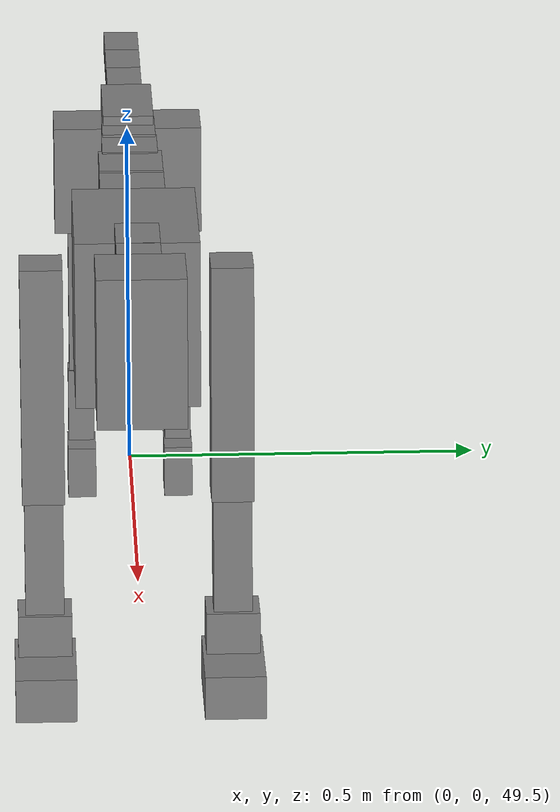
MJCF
<mujoco model="dog">

    <default>
        <joint armature="0.02" stiffness="1" damping="0.2" limited="true"/>
        <geom condim="3" friction="1 0.05 0.05" margin="0.01"/>
        <motor ctrllimited="true" ctrlrange="-1.0 1.0" forcelimited="true" gear="50"/>
    </default>

    <compiler inertiafromgeom="true" angle="radian"/>

    <option timestep="0.016" iterations="50" tolerance="1e-10" solver="Newton" jacobian="dense" cone="pyramidal"/>

    <size nconmax="20000" njmax="60000" nstack="5000000"/>
    <visual>
        <map force="0.1" zfar="30"/>
        <rgba haze="0.15 0.25 0.35 1"/>
        <quality shadowsize="2048"/>
        <global offwidth="800" offheight="800"/>
    </visual>

    <asset>
        <texture type="skybox" builtin="gradient" rgb1="0.3 0.5 0.7" rgb2="0 0 0" width="512" height="512"/>
        <texture name="texplane" type="2d" builtin="checker" rgb1=".2 .3 .4" rgb2=".1 0.15 0.2" width="512" height="512"
                 mark="cross" markrgb=".8 .8 .8"/>
        <texture name="texgeom" type="cube" builtin="flat" mark="cross" width="127" height="1278" rgb1="0.8 0.6 0.4"
                 rgb2="0.8 0.6 0.4" markrgb="1 1 1" random="0.01"/>

        <material name="matplane" reflectance="0.3" texture="texplane" texrepeat="1 1" texuniform="true"/>
        <material name="matgeom" texture="texgeom" texuniform="true" rgba="0.8 0.6 .4 1"/>
    </asset>

    <worldbody>
        <geom name="floor" pos="0 0 0" size="0 0 .25" type="plane" material="matplane" condim="3"/>

        <light directional="false" diffuse=".2 .2 .2" specular="0 0 0" pos="0 0 5" dir="0 0 -1" castshadow="false"/>
        <light mode="targetbodycom" target="torso" directional="false" diffuse=".8 .8 .8" specular="0.3 0.3 0.3"
               pos="0 0 4.0" dir="0 0 -1"/>

        <body name="root" pos="0 0 50">
            <freejoint name="root_1"/>
            <geom type="box" pos="0 0 -0.02" size="0.0774  0.0358  0.063" density="2030"/>

            <body name="spine1" pos="0.054 0 0">
                <joint name="spine1_y" axis="0 1 0" range="0 0.7" limited="true"/>
                <geom type="box" pos="0.02375 0 -0.03" size="0.04375  0.0375  0.05985" density="2030"/>

                <body name="spine2" pos="0.0612 0 0">
                    <joint name="spine2_y" axis="0 1 0" range="-0.15 0.15" limited="true"/>
                    <geom type="box" pos="0.03555  0  -0.04" size="0.04055  0.039  0.06615" density="2030"/>

                    <body name="spine3" pos="0.0730 0 0">
                        <joint name="spine3_y" axis="0 1 0" range="-0.15 0.15" limited="true"/>
                        <geom type="box" pos="0.03555  0  -0.057" size="0.04555  0.0445  0.081" density="2030"/>

                        <body name="spine4" pos="0.0780 0 0">
                            <joint name="spine4_y" axis="0 1 0" range="-0.15 0.15" limited="true"/>
                            <geom type="box" pos="0.05265  0  -0.07" size="0.05265  0.045  0.09135" density="2030"/>

                            <body name="torso" pos="0.1082 0 0">
                                <joint name="torso_y" axis="0 1 0" range="-0.15 0.15" limited="true"/>
                                <geom type="box" pos="0.11925  0  -0.085" size="0.11925  0.085  0.11745"
                                      density="2030"/>

                                <body name="neck1" pos="0.2160  0   0.0180">
                                    <joint name="neck1_y" axis="0 1 0" range="-1.2  -1" limited="true"/>
                                    <geom type="box" pos="0.0423  0  0" size="0.0423  0.03  0.036" density="2325"/>

                                    <body name="neck2" pos="0.0853  0  0">
                                        <joint name="neck2_y" axis="0 1 0" range="0.1  0" limited="true"/>
                                        <geom type="box" pos="0.0423  0  0" size="0.0423  0.03  0.036" density="2325"/>

                                        <body name="head" pos="0.0853  0  0">
                                            <joint name="head_y" axis="0 1 0" range="-0.3  -0.2" limited="true"/>
                                            <geom type="box" pos="0.0531  0  -0.055" size="0.0531  0.06  0.1044"
                                                  density="4030"/>

                                        </body>
                                    </body>
                                </body>

                                <body name="front_shoulder" pos="0.156  0   -0.0480">
                                    <joint name="front_shoulder_y" axis="0 1 0" range="-1 1.5" limited="true"/>
                                    <geom type="box" pos="0 0.13 -0.1429" size="0.0342  0.0293  0.1696" density="1158"/>
                                    <geom type="box" pos="0 -0.13 -0.1429" size="0.0342  0.0293  0.1696"
                                          density="1158"/>

                                    <body name="front_elbow" pos="0  0  -0.2859">
                                        <joint name="front_elbow_y" axis="0 1 0" range="-2 0" limited="true"/>
                                        <geom type="box" pos="0 0.13 -0.1024" size="0.0261  0.0267  0.1024"
                                              density="1081"/>
                                        <geom type="box" pos="0 -0.13 -0.1024" size="0.0261  0.0267  0.1024"
                                              density="1081"/>

                                        <body name="front_wrist" pos="0  0  -0.2048">
                                            <joint name="front_wrist_y" axis="0 1 0" range="-0.2 0" limited="true"/>
                                            <geom type="box" pos="0 0.13 -0.0307" size="0.0335  0.0372  0.0438"
                                                  density="1664"/>
                                            <geom type="box" pos="0 -0.13 -0.0307" size="0.0335  0.0372  0.0438"
                                                  density="1664"/>

                                            <body name="front_finger_end" pos="0  0  -0.0614">
                                                <joint name="front_finger_y" axis="0 1 0" range="-0.4 1"
                                                       limited="true"/>
                                                <geom type="box" pos="0.0421  0.13  -0.0161"
                                                      size="0.0772  0.0421  0.0311" density="1515"/>
                                                <geom type="box" pos="0.0421  -0.13  -0.0161"
                                                      size="0.0772  0.0421  0.0311" density="1515"/>

                                            </body>

                                        </body>
                                    </body>
                                </body>

                            </body>
                        </body>
                    </body>
                </body>
            </body>

            <body name="back_hip" pos="-0.03 0 -0.018">
                <joint name="back_hip_y" axis="0 1 0" range="-1.5 0.3" limited="true"/>
                <geom type="box" pos="0 0.07 -0.0555" size="0.0450  0.0353  0.0783" density="1154"/>
                <geom type="box" pos="0 -0.07 -0.0555" size="0.0450  0.0353  0.0783" density="1154"/>

                <body name="back_knee" pos="0  0  -0.1111">
                    <joint name="back_knee_y" axis="0 1 0" range="0 2.8" limited="true"/>
                    <geom type="box" pos="0 0.07 -0.1266" size="0.0169  0.0166  0.1422" density="1227"/>
                    <geom type="box" pos="0 -0.07 -0.1266" size="0.0169  0.0166  0.1422" density="1227"/>

                    <body name="back_ankle" pos="0  0  -0.2533">
                        <joint name="back_ankle_y" axis="0 1 0" range="-2.2 0" limited="true"/>
                        <geom type="box" pos="0 0.07 -0.0555" size="0.0185  0.0185  0.0667" density="1284"/>
                        <geom type="box" pos="0 -0.07 -0.0555" size="0.0185  0.0185  0.0667" density="1284"/>

                        <body name="back_toe_end" pos="0  0  -0.1109">
                            <joint name="back_toe_y" axis="0 1 0" range="-0.4 1" limited="true"/>
                            <geom type="box" pos="0.0202  0.07  -0.0223" size="0.0370  0.0202  0.0373" density="1515"/>
                            <geom type="box" pos="0.0202  -0.07  -0.0223" size="0.0370  0.0202  0.0373" density="1515"/>

                        </body>
                    </body>
                </body>
            </body>

            <body name="tail1" pos="-0.074 0 -0.006">
                <joint name="tail1_y" axis="0 1 0" range="-0.2 0.2" limited="true"/>
                <geom type="box" pos="-0.0536  0  0" size="0.045  0.025  0.0175" density="1587"/>

                <body name="tail2" pos="-0.09 0 0">
                    <joint name="tail2_y" axis="0 1 0" range="-0.2 0.2" limited="true"/>
                    <geom type="box" pos="-0.0536  0  0" size="0.045  0.025  0.0175" density="1587"/>

                    <body name="tail3" pos="-0.09 0 0">
                        <joint name="tail3_y" axis="0 1 0" range="-0.2 0.2" limited="true"/>
                        <geom type="box" pos="-0.0536  0  0" size="0.045  0.025  0.0175" density="1587"/>

                        <body name="tail4" pos="-0.09 0 0">
                            <joint name="tail4_y" axis="0 1 0" range="-0.2 0.2" limited="true"/>
                            <geom type="box" pos="-0.0536  0  0" size="0.045  0.025  0.0175" density="1587"/>

                        </body>
                    </body>
                </body>
            </body>
        </body>
    </worldbody>

    <actuator>
        <motor joint="spine1_y" forcerange="-150 150     "/>
        <motor joint="spine2_y" forcerange="-150 150     "/>
        <motor joint="spine3_y" forcerange="-150 150     "/>
        <motor joint="spine4_y" forcerange="-150 150     "/>
        <motor joint="torso_y" forcerange="-150 150     "/>
        <motor joint="neck1_y" forcerange="-100 100       "/>
        <motor joint="neck2_y" forcerange="-100 100       "/>
        <motor joint="head_y" forcerange="-150 150       "/>
        <motor joint="front_shoulder_y" forcerange="-192.41 102.74"/>
        <motor joint="front_elbow_y" forcerange="-146.05 147.97"/>
        <motor joint="front_wrist_y" forcerange="-149.44 148.27"/>
        <motor joint="front_finger_y" forcerange="-96.33 88.19"/>
        <motor joint="back_hip_y" forcerange="-350.85 320.23"/>
        <motor joint="back_knee_y" forcerange="-206.61 235.29"/>
        <motor joint="back_angle_y" forcerange="-118.96 76.28"/>
        <motor joint="back_toe_y" forcerange="-28.87 52.62"/>
        <motor joint="tail1_y" forcerange="-50 50     "/>
        <motor joint="tail2_y" forcerange="-50 50     "/>
        <motor joint="tail3_y" forcerange="-50 50     "/>
        <motor joint="tail4_y" forcerange="-50 50     "/>
    </actuator>
</mujoco>
